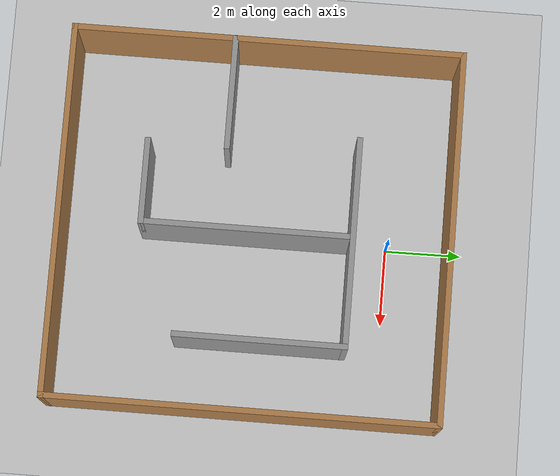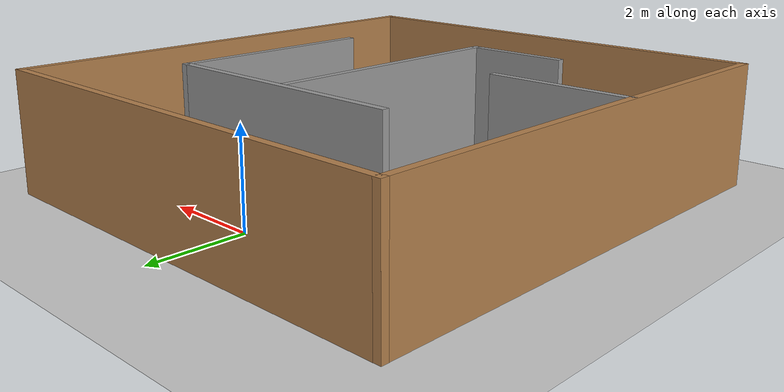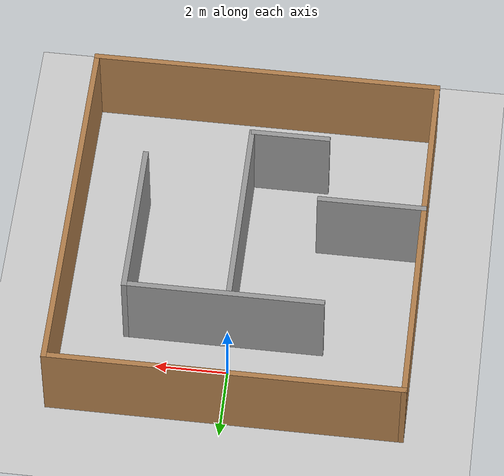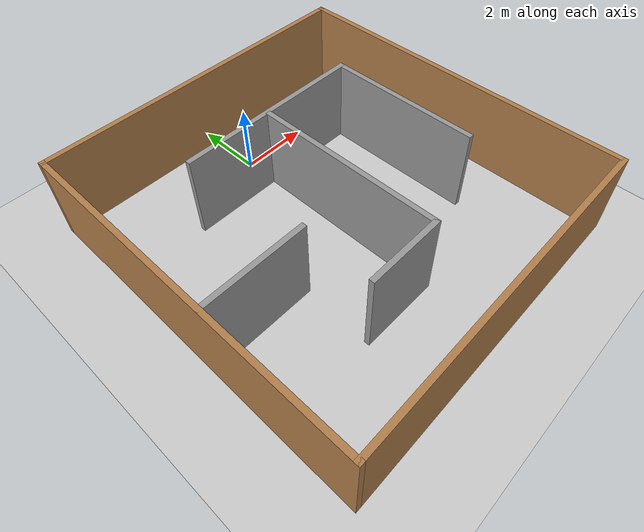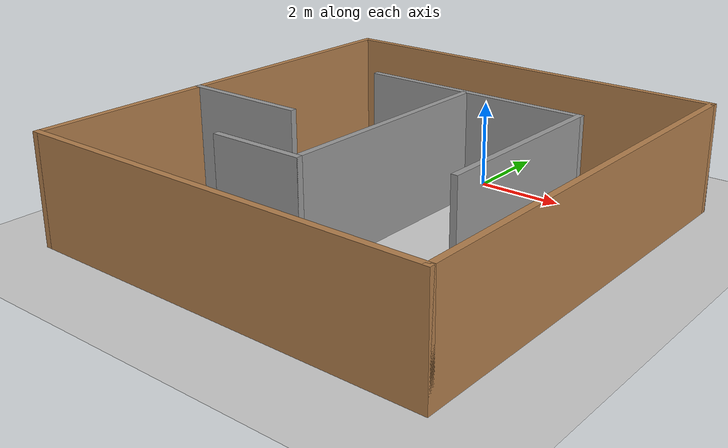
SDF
<sdf version="1.7">
 <world name="default">
  <light name="sun" type="directional">
   <pose>0 0 10 0 -0 0</pose>
   <diffuse>0.8 0.8 0.8 1</diffuse>
   <specular>0.2 0.2 0.2 1</specular>
   <attenuation>
    <range>1000</range>
    <constant>0.9</constant>
    <linear>0.01</linear>
    <quadratic>0.001</quadratic>
   </attenuation>
   <direction>-0.5 0.1 -0.9</direction>
   <spot><inner_angle>0</inner_angle><outer_angle>0</outer_angle><falloff>0</falloff></spot>
  </light>
  <model name="ground_plane">
   <static>1</static>
   <link name="link">
    <collision name="collision">
     <geometry><plane><normal>0 0 1</normal><size>100 100</size></plane></geometry>
     <surface><friction><ode><mu>100</mu><mu2>50</mu2></ode></friction></surface>
    </collision>
    <visual name="visual">
     <cast_shadows>0</cast_shadows>
     <geometry><plane><normal>0 0 1</normal><size>100 100</size></plane></geometry>
     <material>
      <script><uri>file://media/materials/scripts/gazebo.material</uri><name>Gazebo/Grey</name></script>
     </material>
    </visual>
   </link>
  </model>
  <gravity>0 0 -9.8</gravity>
  <magnetic_field>6e-06 2.3e-05 -4.2e-05</magnetic_field>
  <atmosphere type="adiabatic"/>
  <physics type="ode">
   <max_step_size>0.001</max_step_size>
   <real_time_factor>1</real_time_factor>
   <real_time_update_rate>1000</real_time_update_rate>
  </physics>
  <scene><ambient>0.4 0.4 0.4 1</ambient><background>0.7 0.7 0.7 1</background><shadows>1</shadows></scene>
  <audio><device>default</device></audio>
  <spherical_coordinates>
   <surface_model>EARTH_WGS84</surface_model>
   <latitude_deg>0</latitude_deg>
   <longitude_deg>0</longitude_deg>
   <elevation>0</elevation>
   <heading_deg>0</heading_deg>
  </spherical_coordinates>
  <model name="indoor">
   <pose>-0.091871 -3.4752 0 0 0 -1.57239</pose>
   <link name="Wall_11">
    <collision name="Wall_11_Collision">
     <geometry><box><size>9.75 0.15 2.5</size></box></geometry>
     <pose>0 0 1.25 0 -0 0</pose>
    </collision>
    <visual name="Wall_11_Visual">
     <pose>0 0 1.25 0 -0 0</pose>
     <geometry><box><size>9.75 0.15 2.5</size></box></geometry>
     <material>
      <script><uri>file://media/materials/scripts/gazebo.material</uri><name>Gazebo/Wood</name></script>
      <ambient>1 1 1 1</ambient>
     </material>
     <meta><layer>0</layer></meta>
    </visual>
    <pose>-5.05 0 0 0 -0 1.5708</pose>
   </link>
   <link name="Wall_12">
    <collision name="Wall_12_Collision">
     <geometry><box><size>10.25 0.15 2.5</size></box></geometry>
     <pose>0 0 1.25 0 -0 0</pose>
    </collision>
    <visual name="Wall_12_Visual">
     <pose>0 0 1.25 0 -0 0</pose>
     <geometry><box><size>10.25 0.15 2.5</size></box></geometry>
     <material>
      <script><uri>file://media/materials/scripts/gazebo.material</uri><name>Gazebo/Wood</name></script>
      <ambient>1 1 1 1</ambient>
     </material>
     <meta><layer>0</layer></meta>
    </visual>
    <pose>0 4.8 0 0 -0 0</pose>
   </link>
   <link name="Wall_13">
    <collision name="Wall_13_Collision">
     <geometry><box><size>9.75 0.15 2.5</size></box></geometry>
     <pose>0 0 1.25 0 -0 0</pose>
    </collision>
    <visual name="Wall_13_Visual">
     <pose>0 0 1.25 0 -0 0</pose>
     <geometry><box><size>9.75 0.15 2.5</size></box></geometry>
     <material>
      <script><uri>file://media/materials/scripts/gazebo.material</uri><name>Gazebo/Wood</name></script>
      <ambient>1 1 1 1</ambient>
     </material>
     <meta><layer>0</layer></meta>
    </visual>
    <pose>5.05 0 0 0 -0 -1.5708</pose>
   </link>
   <link name="Wall_14">
    <collision name="Wall_14_Collision">
     <geometry><box><size>10.25 0.15 2.5</size></box></geometry>
     <pose>0 0 1.25 0 -0 0</pose>
    </collision>
    <visual name="Wall_14_Visual">
     <pose>0 0 1.25 0 -0 0</pose>
     <geometry><box><size>10.25 0.15 2.5</size></box></geometry>
     <material>
      <script><uri>file://media/materials/scripts/gazebo.material</uri><name>Gazebo/Wood</name></script>
      <ambient>1 1 1 1</ambient>
     </material>
     <meta><layer>0</layer></meta>
    </visual>
    <pose>0 -4.8 0 0 -0 3.14159</pose>
   </link>
   <link name="Wall_16">
    <collision name="Wall_16_Collision">
     <geometry><box><size>5.5 0.15 2.5</size></box></geometry>
     <pose>0 0 1.25 0 -0 0</pose>
    </collision>
    <visual name="Wall_16_Visual">
     <pose>0 0 1.25 0 -0 0</pose>
     <geometry><box><size>5.5 0.15 2.5</size></box></geometry>
     <material>
      <script><uri>file://media/materials/scripts/gazebo.material</uri><name>Gazebo/Grey</name></script>
      <ambient>1 1 1 1</ambient>
     </material>
     <meta><layer>0</layer></meta>
    </visual>
    <pose>-2.53114 0.319143 0 0 -0 -1.5708</pose>
   </link>
   <link name="Wall_18">
    <collision name="Wall_18_Collision">
     <geometry><box><size>5.5 0.15 2.5</size></box></geometry>
     <pose>0 0 1.25 0 -0 0</pose>
    </collision>
    <visual name="Wall_18_Visual">
     <pose>0 0 1.25 0 -0 0</pose>
     <geometry><box><size>5.5 0.15 2.5</size></box></geometry>
     <material>
      <script><uri>file://media/materials/scripts/gazebo.material</uri><name>Gazebo/Grey</name></script>
      <ambient>1 1 1 1</ambient>
     </material>
     <meta><layer>0</layer></meta>
    </visual>
    <pose>0.236436 0.163993 0 0 -0 0</pose>
   </link>
   <link name="Wall_21">
    <collision name="Wall_21_Collision">
     <geometry><box><size>3 0.15 2.5</size></box></geometry>
     <pose>0 0 1.25 0 -0 0</pose>
    </collision>
    <visual name="Wall_21_Visual">
     <pose>0 0 1.25 0 -0 0</pose>
     <geometry><box><size>3 0.15 2.5</size></box></geometry>
     <material>
      <script><uri>file://media/materials/scripts/gazebo.material</uri><name>Gazebo/Grey</name></script>
      <ambient>1 1 1 1</ambient>
     </material>
     <meta><layer>0</layer></meta>
    </visual>
    <pose>0.867686 -3.37038 0 0 -0 1.5708</pose>
   </link>
   <link name="Wall_25">
    <collision name="Wall_25_Collision">
     <geometry><box><size>2.25 0.15 2.5</size></box></geometry>
     <pose>0 0 1.25 0 -0 0</pose>
    </collision>
    <visual name="Wall_25_Visual">
     <pose>0 0 1.25 0 -0 0</pose>
     <geometry><box><size>2.25 0.15 2.5</size></box></geometry>
     <material>
      <script><uri>file://media/materials/scripts/gazebo.material</uri><name>Gazebo/Grey</name></script>
      <ambient>1 1 1 1</ambient>
     </material>
     <meta><layer>0</layer></meta>
    </visual>
    <pose>2.91144 -0.886007 0 0 -0 -1.5708</pose>
   </link>
   <link name="Wall_27">
    <collision name="Wall_27_Collision">
     <geometry><box><size>4.5 0.15 2.5</size></box></geometry>
     <pose>0 0 1.25 0 -0 0</pose>
    </collision>
    <visual name="Wall_27_Visual">
     <pose>0 0 1.25 0 -0 0</pose>
     <geometry><box><size>4.5 0.15 2.5</size></box></geometry>
     <material>
      <script><uri>file://media/materials/scripts/gazebo.material</uri><name>Gazebo/Grey</name></script>
      <ambient>1 1 1 1</ambient>
     </material>
     <meta><layer>0</layer></meta>
    </visual>
    <pose>-0.356139 2.99414 0 0 -0 0</pose>
   </link>
   <static>1</static>
  </model>
 </world>
</sdf>
